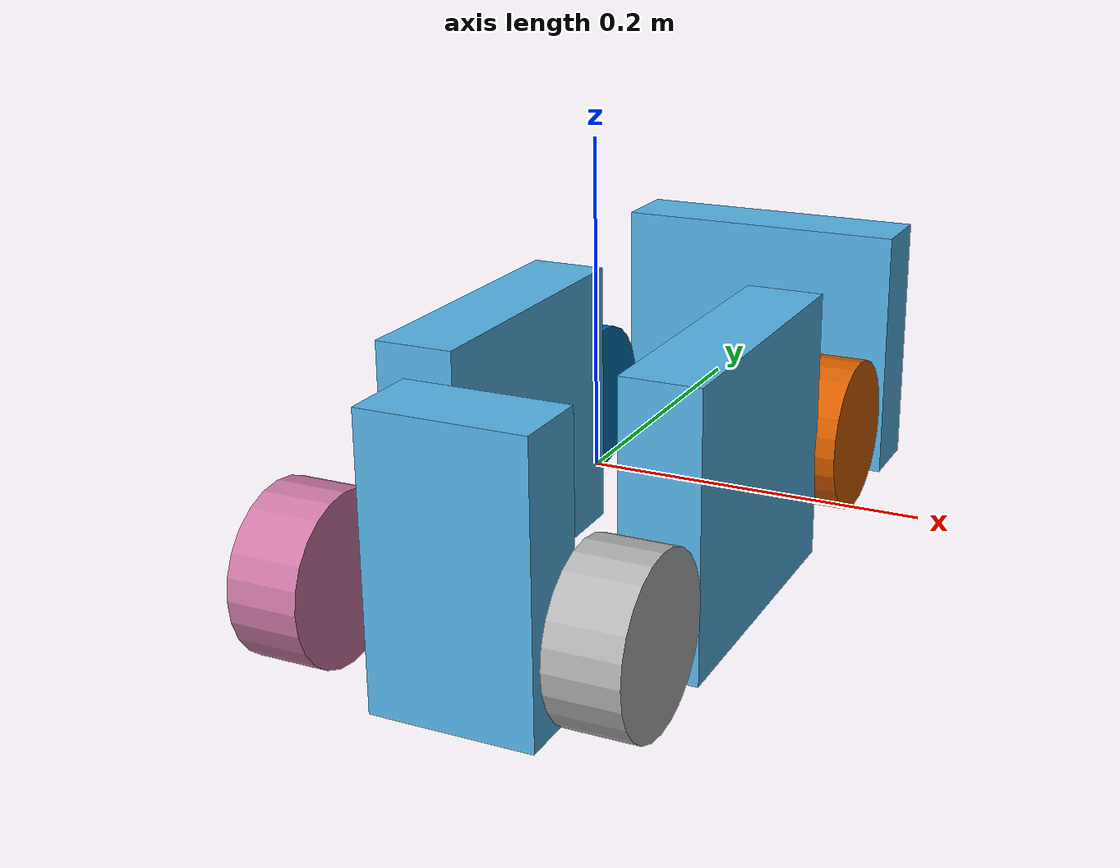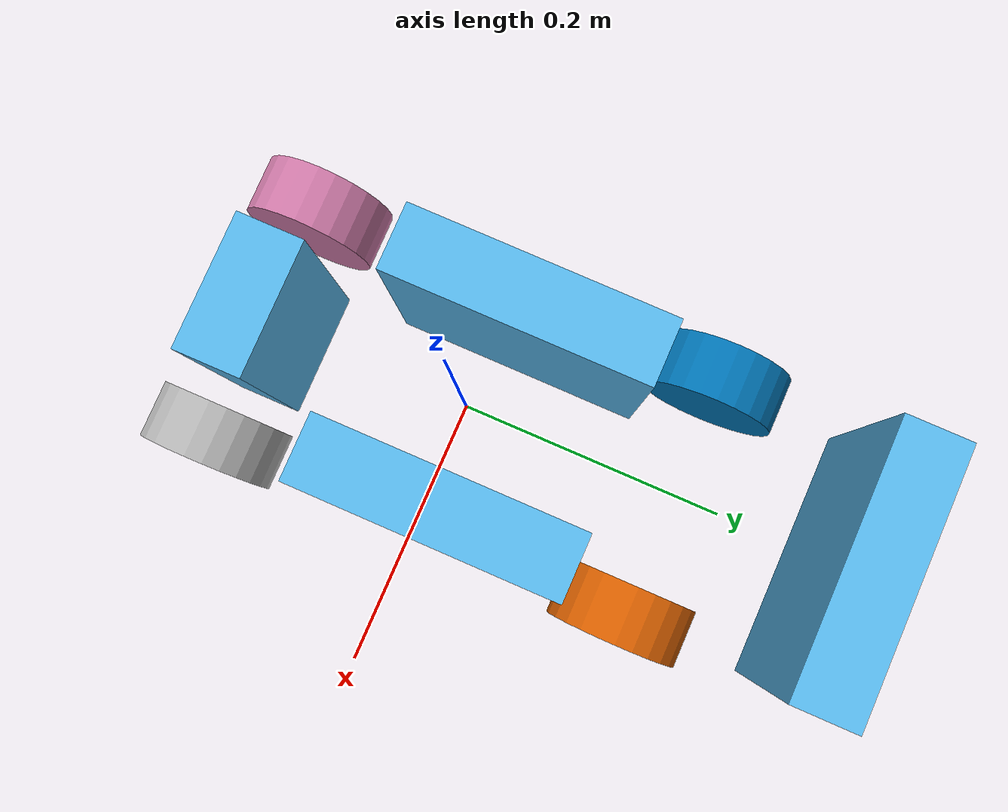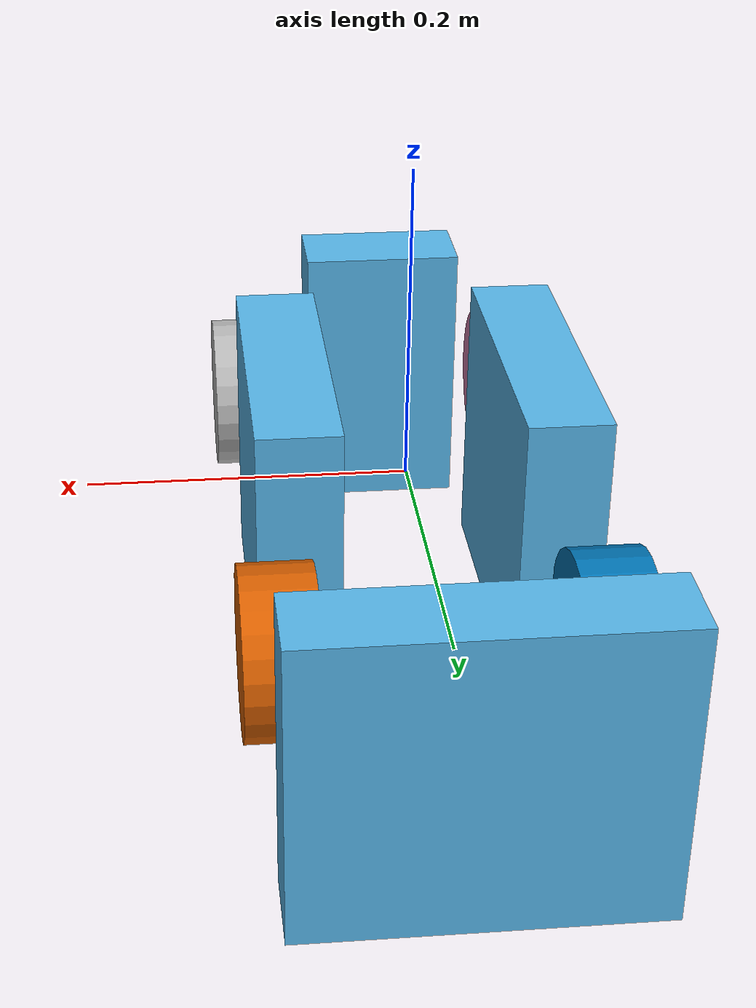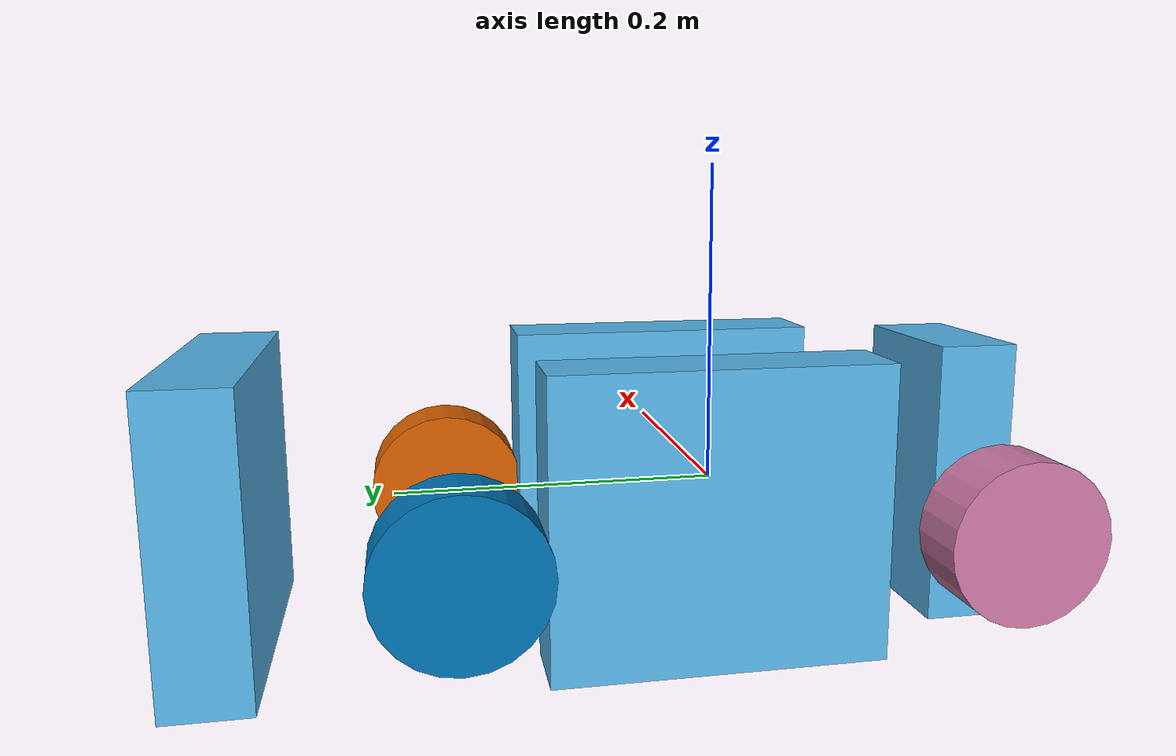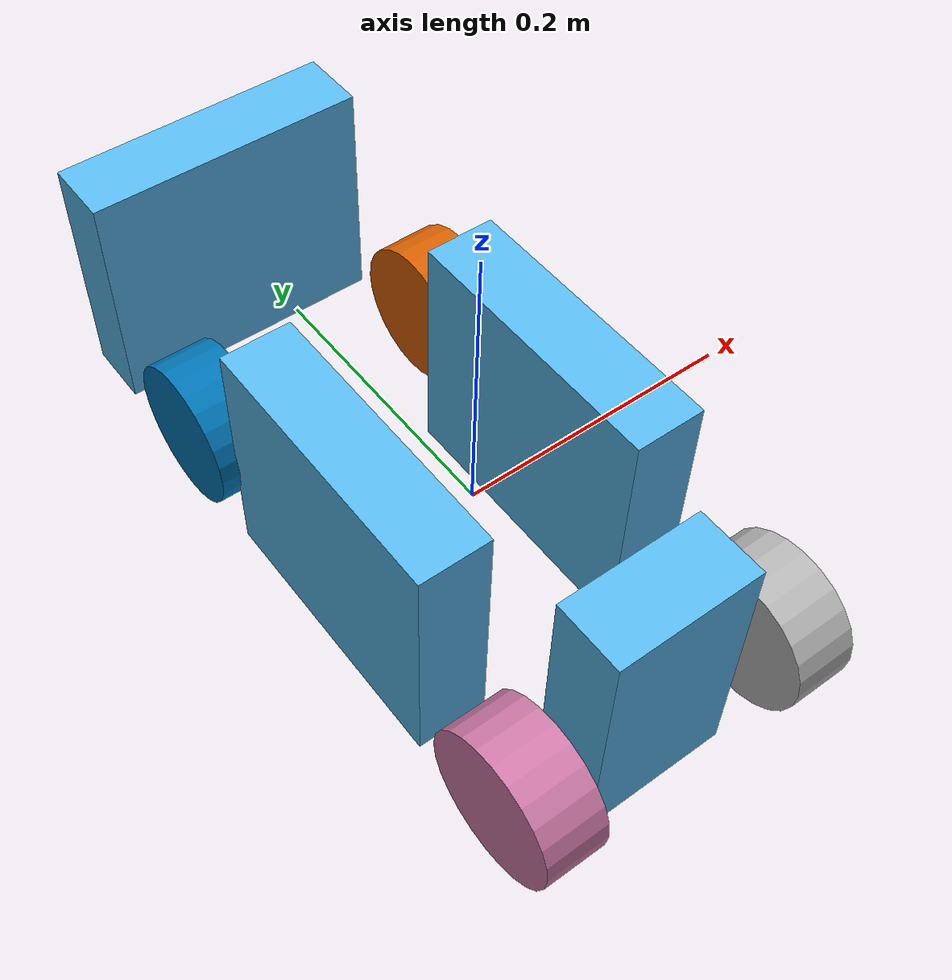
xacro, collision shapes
<?xml version="1.0"?>
<robot xmlns:xacro="http://ros.org/wiki/xacro" name="traxxas">

    <!--- File Properties -->

    <!-- physics properties -->
    <xacro:property name="physics_mu1" value="1"/>
    <xacro:property name="physics_mu2" value="1"/>
    <xacro:property name="physics_min_depth" value="0.05"/>
    <xacro:property name="physics_kp" value="1e8"/>

    <!-- wheel properties -->
    <xacro:property name="wheel_radius" value="0.0508"/>
    <xacro:property name="wheel_width" value="0.04318"/>
    <xacro:property name="wheel_mass" value=".5"/>
    <xacro:property name="wheel_limit" value="56.5"/>
    <xacro:property name="wheel_mesh" value="package://traxxas_ros_gazebo/meshes/wheel.obj"/>

    <!-- chassis properties -->
    <xacro:property name="chassis_mass" value="10"/>
    <xacro:property name="chassis_width" value="0.2032"/>
    <xacro:property name="chassis_length" value="0.508"/>
    <xacro:property name="chassis_height" value="0.1778"/>
    <xacro:property name="chassis_z_offset" value="0.0381"/>
    <xacro:property name="chassis_y_offset" value="0.07"/>
    <xacro:property name="collision_width" value="0.05"/>
    <xacro:property name="collision_side_length" value="0.2"/>
    <xacro:property name="collision_front_rear_length" value="0.3"/>
    <xacro:property name="collision_height" value="0.1778"/>
    <xacro:property name="chassis_mesh" value="package://traxxas_ros_gazebo/meshes/body.obj"/>

    <!-- axle properties -->
    <xacro:property name="axle_mass" value=".05"/>

    <!-- steering properties -->
    <xacro:property name="steering_effort" value="100"/>
    <xacro:property name="steering_velocity" value="100"/>

    <!-- sensor properties -->
    <xacro:property name="sensor_mass" value="0.1"/>
    <xacro:property name="sensor_inertia" value="0.0001"/>

    <!-- base_link properties -->
    <xacro:property name="base_link_mass" value="0.1"/>
    <xacro:property name="base_link_inertia" value="0.00001"/>

    <!--- Links -->

    <xacro:macro name="wheel_physics" params="name">
        <gazebo reference="${name}_wheel">
            <mu1>${physics_mu1}</mu1>
            <mu2>${physics_mu2}</mu2>
            <minDepth>${physics_min_depth}</minDepth>
            <kp>${physics_kp}</kp>
        </gazebo>
    </xacro:macro>

    <xacro:wheel_physics name="front_left"/>
    <xacro:wheel_physics name="front_right"/>
    <xacro:wheel_physics name="rear_left"/>
    <xacro:wheel_physics name="rear_right"/>

    <link name="base_link">
        <inertial>
            <mass value="${base_link_mass}"/>
            <inertia ixx="${base_link_inertia}" ixy="0.0" ixz="0.0" iyy="${base_link_inertia}" iyz="0.0"
                     izz="${base_link_inertia}"/>
        </inertial>
    </link>

    <xacro:macro name="chassis_collision" params="name *center *shape">
        <collision name="${name}_collision">
            <xacro:insert_block name="center"/>
            <geometry>
                <xacro:insert_block name="shape"/>
            </geometry>
        </collision>
    </xacro:macro>

    <link name="chassis">
        <visual>
            <origin xyz="0 0 ${-chassis_z_offset}" rpy="0 0 0"/>
            <geometry>
                <mesh filename="${chassis_mesh}" scale="0.1 0.1 0.1"/>
            </geometry>
        </visual>
        <xacro:chassis_collision name="front">
            <origin xyz="0 ${chassis_length/2-collision_width/2+chassis_y_offset} 0"/>
            <box size="${chassis_width} ${collision_width} ${collision_height}"/>
        </xacro:chassis_collision>
        <xacro:chassis_collision name="rear">
            <origin xyz="0 ${-chassis_length/2+collision_width/2+chassis_y_offset} 0"/>
            <box size="${chassis_width/2} ${collision_width} ${collision_height}"/>
        </xacro:chassis_collision>
        <xacro:chassis_collision name="right">
            <origin xyz="${chassis_width/2-collision_width/2} ${chassis_y_offset/4} 0"/>
            <box size="${collision_width} ${collision_side_length} ${collision_height}"/>
        </xacro:chassis_collision>
        <xacro:chassis_collision name="left">
            <origin xyz="${-chassis_width/2+collision_width/2} ${chassis_y_offset/4} 0"/>
            <box size="${collision_width} ${collision_side_length} ${collision_height}"/>
        </xacro:chassis_collision>
        <inertial>
            <mass value="${chassis_mass}"/>
            <origin xyz="0 ${chassis_y_offset} 0" rpy="0 0 0"/>
            <inertia ixx="${1/12*chassis_mass*(chassis_height**2+chassis_length**2)}" ixy="0.0" ixz="0.0"
                     iyy="${1/12*chassis_mass*(chassis_width**2+chassis_height**2)}" iyz="0.0"
                     izz="${1/12*chassis_mass*(chassis_width**2+chassis_length**2)}"/>
        </inertial>
    </link>

    <xacro:macro name="declare_axle" params="name reflect">
        <link name="${name}">
            <inertial>
                <mass value="${axle_mass}"/>
                <origin xyz="${reflect*wheel_width/2} 0 0.0025" rpy="0 0 0"/>
                <inertia ixx="${1/2*axle_mass*wheel_radius**2}" ixy="0.0" ixz="0.0"
                         iyy="${1/12*axle_mass*(3*wheel_radius**2+wheel_width**2)}" iyz="0.0"
                         izz="${1/12*axle_mass*(3*wheel_radius**2+wheel_width**2)}"/>
            </inertial>
        </link>
    </xacro:macro>

    <xacro:declare_axle name="fl_axle" reflect="-1"/>
    <xacro:declare_axle name="fr_axle" reflect="1"/>

    <xacro:macro name="declare_wheel" params="name reflect rotate">
        <link name="${name}_wheel">
            <inertial>
                <mass value="${wheel_mass}"/>
                <origin xyz="${reflect*wheel_width/2} 0 0" rpy="0 0 0"/>
                <inertia ixx="${1/2*wheel_mass*wheel_radius**2}" ixy="0.0" ixz="0.0"
                         iyy="${1/12*wheel_mass*(3*wheel_radius**2+wheel_width**2)}" iyz="0.0"
                         izz="${1/12*wheel_mass*(3*wheel_radius**2+wheel_width**2)}"/>
            </inertial>
            <collision name="${name}_wheel_collision">
                <geometry>
                    <cylinder length="${wheel_width}" radius="${wheel_radius}"/>
                </geometry>
                <origin xyz="${reflect*wheel_width/2} 0 0" rpy="0 ${pi/2} 0"/>
            </collision>
            <visual>
                <origin xyz="0 0 0" rpy="0 ${rotate} 0"/>
                <geometry>
                    <mesh filename="${wheel_mesh}" scale="0.1 0.1 0.1"/>
                </geometry>
            </visual>
        </link>
    </xacro:macro>

    <xacro:declare_wheel name="front_left" reflect="-1" rotate="${pi}"/>
    <xacro:declare_wheel name="front_right" reflect="1" rotate="0"/>
    <xacro:declare_wheel name="rear_left" reflect="-1" rotate="${pi}"/>
    <xacro:declare_wheel name="rear_right" reflect="1" rotate="0"/>

    <!--- Joints -->

    <joint name="base_link_connection" type="fixed">
        <parent link="base_link"/>
        <child link="chassis"/>
        <origin xyz="0 0 0" rpy="0 0 0"/>
        <axis xyz="1 0 0"/>
    </joint>

    <xacro:macro name="steer_joint" params="name child *shape *limits">
        <joint name="${name}_joint" type="revolute">
            <xacro:insert_block name="shape"/>
            <parent link="chassis"/>
            <child link="${child}"/>
            <axis xyz="0 0 1"/>
            <xacro:insert_block name="limits"/>
        </joint>
    </xacro:macro>

    <xacro:steer_joint name="front_left_steer" child="fl_axle">
        <origin xyz="-${chassis_width/2-0.03} 0.165 -0.02" rpy="0 0 0"/>
        <limit lower="${-wheel_limit}" upper="${wheel_limit}" effort="${steering_effort}"
               velocity="${steering_velocity}"/>
    </xacro:steer_joint>

    <xacro:steer_joint name="front_right_steer" child="fr_axle">
        <origin xyz="${chassis_width/2-0.03} 0.165 -0.02" rpy="0 0 0"/>
        <limit lower="${-wheel_limit}" upper="${wheel_limit}" effort="${steering_effort}"
               velocity="${steering_velocity}"/>
    </xacro:steer_joint>

    <xacro:macro name="wheel_joint" params="name parent *shape">
        <joint name="${name}_wheel_joint" type="continuous">
            <parent link="${parent}"/>
            <child link="${name}_wheel"/>
            <xacro:insert_block name="shape"/>
            <dynamics damping="0.1" friction="0.01"/>
            <axis xyz="-1 0 0"/>
        </joint>
    </xacro:macro>

    <xacro:wheel_joint name="front_left" parent="fl_axle">
        <origin xyz="0 0 0" rpy="0 0 0"/>
    </xacro:wheel_joint>
    <xacro:wheel_joint name="front_right" parent="fr_axle">
        <origin xyz="0 0 0" rpy="0 0 0"/>
    </xacro:wheel_joint>
    <xacro:wheel_joint name="rear_left" parent="chassis">
        <origin xyz="-${chassis_width/2-0.03} -0.165 -0.02" rpy="0 0 0"/>
    </xacro:wheel_joint>
    <xacro:wheel_joint name="rear_right" parent="chassis">
        <origin xyz="${chassis_width/2-0.03} -0.165 -0.02" rpy="0 0 0"/>
    </xacro:wheel_joint>

    <!-- Sensor links and fixed joints -->

    <link name="center_laser_link">
        <inertial>
            <mass value="${sensor_mass}"/>
            <inertia ixx="${sensor_inertia}" ixy="0.0" ixz="0.0" iyy="${sensor_inertia}" iyz="0.0"
                     izz="${sensor_inertia}"/>
        </inertial>
    </link>

    <joint name="center_laser_joint" type="fixed">
        <parent link="chassis"/>
        <child link="center_laser_link"/>
        <origin xyz="0 0.089 0.019" rpy="0 0 ${pi/2}"/>
    </joint>

    <gazebo reference="base_link_connection">
        <disableFixedJointLumping>true</disableFixedJointLumping>
    </gazebo>

    <link name="front_camera_link">
        <inertial>
            <mass value="${sensor_mass}"/>
            <inertia ixx="${sensor_inertia}" ixy="0.0" ixz="0.0" iyy="${sensor_inertia}" iyz="0.0"
                     izz="${sensor_inertia}"/>
        </inertial>
    </link>

    <joint name="front_camera_joint" type="fixed">
        <parent link="chassis"/>
        <child link="front_camera_link"/>
        <origin xyz="0 0.2 0.1" rpy="0 0 ${pi/2}"/>
    </joint>

    <gazebo>
        <plugin name="prius__drive" filename="libTraxxasPlugin.so">
            <chassis>chassis</chassis>
            <front_left_wheel>front_left_wheel_joint</front_left_wheel>
            <front_right_wheel>front_right_wheel_joint</front_right_wheel>
            <front_left_wheel_steering>front_left_steer_joint</front_left_wheel_steering>
            <front_right_wheel_steering>front_right_steer_joint</front_right_wheel_steering>
            <back_left_wheel>rear_left_wheel_joint</back_left_wheel>
            <back_right_wheel>rear_right_wheel_joint</back_right_wheel>
            <chassis_aero_force_gain>0.01</chassis_aero_force_gain>
            <front_torque>10</front_torque>
            <back_torque>10</back_torque>
            <front_brake_torque>10</front_brake_torque>
            <back_brake_torque>10</back_brake_torque>
            <max_speed>20</max_speed>
            <max_steer>0.6458</max_steer>
            <flwheel_steering_p_gain>1e1</flwheel_steering_p_gain>
            <frwheel_steering_p_gain>1e1</frwheel_steering_p_gain>
            <flwheel_steering_i_gain>0</flwheel_steering_i_gain>
            <frwheel_steering_i_gain>0</frwheel_steering_i_gain>
            <flwheel_steering_d_gain>1</flwheel_steering_d_gain>
            <frwheel_steering_d_gain>1</frwheel_steering_d_gain>
        </plugin>
    </gazebo>

    <gazebo>
        <plugin name="joint_state_publisher" filename="libgazebo_ros_joint_state_publisher.so">
            <jointName>rear_right_wheel_joint, rear_left_wheel_joint, front_right_wheel_joint, front_left_wheel_joint,
                front_right_steer_joint, front_left_steer_joint
            </jointName>
            <updateRate>100.0</updateRate>
            <alwaysOn>true</alwaysOn>
        </plugin>
    </gazebo>

    <gazebo>
        <plugin name="p3d" filename="libgazebo_ros_p3d.so">
            <bodyName>base_link</bodyName>
            <topicName>base_pose_ground_truth</topicName>
            <frameName>map</frameName>
            <updateRate>100.0</updateRate>
        </plugin>
    </gazebo>

    <gazebo reference="center_laser_link">
        <sensor name='center_laser_sensor' type='ray'>
            <ray>
                <scan>
                    <horizontal>
                        <samples>512</samples>
                        <resolution>1</resolution>
                        <min_angle>${-3/4*pi}</min_angle>
                        <max_angle>${3/4*pi}</max_angle>
                    </horizontal>
                    <vertical>
                        <samples>16</samples>
                        <min_angle>0.01</min_angle>
                        <max_angle>0.01</max_angle>
                    </vertical>
                </scan>
                <range>
                    <min>0.2</min>
                    <max>30</max>
                    <resolution>0.01</resolution>
                </range>
            </ray>
            <plugin name='center_laser' filename='libgazebo_ros_custom_block_laser_plugin.so'>
                <topicName>/traxxas/center_laser/scan</topicName>
                <frameName>center_laser_link</frameName>
            </plugin>
            <always_on>1</always_on>
            <update_rate>30</update_rate>
            <visualize>0</visualize>
        </sensor>
    </gazebo>

    <gazebo reference="front_camera_link">
        <sensor type="camera" name="front_camera_sensor">
            <update_rate>30.0</update_rate>
            <camera name="front_camera">
                <horizontal_fov>1.3962634</horizontal_fov>
                <image>
                    <width>800</width>
                    <height>800</height>
                    <format>R8G8B8</format>
                </image>
                <clip>
                    <near>0.02</near>
                    <far>300</far>
                </clip>
                <noise>
                    <type>gaussian</type>
                    <mean>0.0</mean>
                    <stddev>0.007</stddev>
                </noise>
            </camera>
            <plugin name="front_camera_controller" filename="libgazebo_ros_camera.so">
                <alwaysOn>false</alwaysOn>
                <updateRate>0.0</updateRate>
                <cameraName>/traxxas/front_camera</cameraName>
                <imageTopicName>image_raw</imageTopicName>
                <cameraInfoTopicName>/traxxas/front_camera_info</cameraInfoTopicName>
                <frameName>camera_link</frameName>
                <hackBaseline>0.07</hackBaseline>
                <distortionK1>0.0</distortionK1>
                <distortionK2>0.0</distortionK2>
                <distortionK3>0.0</distortionK3>
                <distortionT1>0.0</distortionT1>
                <distortionT2>0.0</distortionT2>
            </plugin>
        </sensor>
    </gazebo>

</robot>
